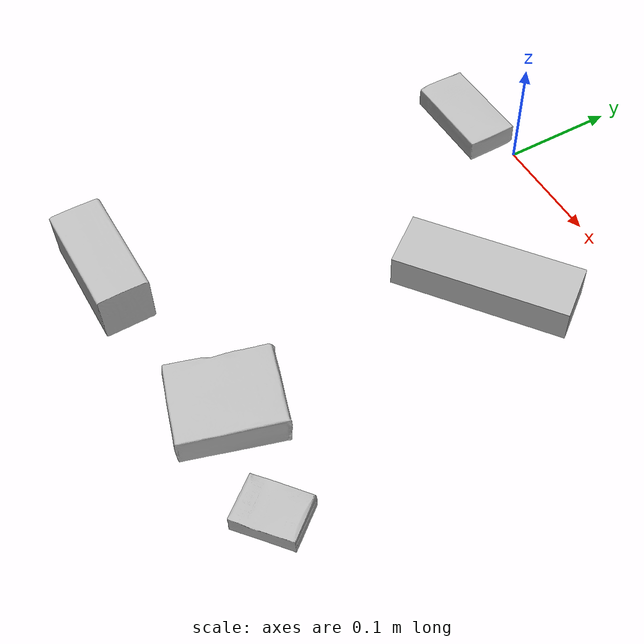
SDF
<sdf version="1.4">
  <world name="default">
    <light name="light1" type="point">
      <pose>0 0 1 0 0 0</pose>
      <diffuse>3 3 3 1</diffuse>
      <specular>3 3 3 1</specular>
    </light>
    <light name="light2" type="point">
      <pose>0 0.5 2 0 0 0</pose>
      <diffuse>1 1 1 1</diffuse>
      <specular>1 1 1 1</specular>
    </light>
    <light name="light3" type="point">
      <pose>0 0.5 2 0 0 0</pose>
      <diffuse>3 3 3 1</diffuse>
      <specular>3 3 3 1</specular>
    </light>
    <scene>
      <ambient>0.7 0.7 0.7</ambient>
    </scene>
    <model name="box1">
      <link name="link_box1">
        <collision name="default">
          <geometry>
            <mesh>
              <uri>model://sugar_box/collision_meshes/collision.obj</uri>
              <scale>0.5 0.5 0.5</scale>
            </mesh>
          </geometry>
          <surface>
            <friction>
              <ode>
                <mu>0.5</mu>
                <mu2>0.5</mu2>
              </ode>
            </friction>
          <contact>
        <ode>
            <max_vel>0</max_vel>
            <min_depth>0.0001</min_depth>
            <kp>1e8</kp>
        </ode>
    </contact></surface>
        </collision>
        <visual name="default">
          <geometry>
            <mesh>
              <uri>model://sugar_box/visual_meshes/visual.dae</uri>
              <scale>0.5 0.5 0.5</scale>
            </mesh>
          </geometry>
        </visual>
        <inertial>
          <mass>0.07249404489994049</mass>
          <pose>0.0005171863012947142 1.924554817378521e-05 -0.00018182402709499002 -0.00040462618385709627 0.0010506635220579009 0.0026153790218148127</pose>
          <inertia>
            <ixx>1.5100456e-05</ixx>
            <iyy>4.8807786e-05</iyy>
            <izz>5.842874e-05</izz>
            <ixy>0</ixy>
            <ixz>0</ixz>
            <iyz>0</iyz>
          </inertia>
        </inertial>
      </link>
      <pose>-0.05619889125227928 -0.016248652711510658 0.011399304494261742 0.0007745932682314662 -0.023433039986203368 -8.346540087773239e-05</pose>
    </model>
    <model name="box2">
      <link name="link_box2">
        <collision name="default">
          <geometry>
            <mesh>
              <uri>model://cracker_box/collision_meshes/collision.obj</uri>
              <scale>0.25 0.25 0.25</scale>
            </mesh>
          </geometry>
          <surface>
            <friction>
              <ode>
                <mu>0.5</mu>
                <mu2>0.5</mu2>
              </ode>
            </friction>
          <contact>
        <ode>
            <max_vel>0</max_vel>
            <min_depth>0.0001</min_depth>
            <kp>1e8</kp>
        </ode>
    </contact></surface>
        </collision>
        <visual name="default">
          <geometry>
            <mesh>
              <uri>model://cracker_box/visual_meshes/visual.dae</uri>
              <scale>0.25 0.25 0.25</scale>
            </mesh>
          </geometry>
        </visual>
        <inertial>
          <mass>0.019660919904708862</mass>
          <pose>0.00023660410079173744 6.358561222441494e-05 -0.0004257383698131889 -0.00031620756431779875 -0.011106489600602764 0.0025467940703044144</pose>
          <inertia>
            <ixx>3.125538e-06</ixx>
            <iyy>5.1608768e-06</iyy>
            <izz>7.365045e-06</izz>
            <ixy>0</ixy>
            <ixz>0</ixz>
            <iyz>0</iyz>
          </inertia>
        </inertial>
      </link>
      <pose>0.21095801889896393 -0.35743963718414307 0.009120448492467403 -0.011787978261200236 -0.007367211563002081 0.6816285299870101</pose>
    </model>
    <model name="box3">
      <link name="link_box3">
        <collision name="default">
          <geometry>
            <mesh>
              <uri>model://wood_block/collision_meshes/collision.obj</uri>
              <scale>0.5 0.5 0.5</scale>
            </mesh>
          </geometry>
          <surface>
            <friction>
              <ode>
                <mu>0.5</mu>
                <mu2>0.5</mu2>
              </ode>
            </friction>
          <contact>
        <ode>
            <max_vel>0</max_vel>
            <min_depth>0.0001</min_depth>
            <kp>1e8</kp>
        </ode>
    </contact></surface>
        </collision>
        <visual name="default">
          <geometry>
            <mesh>
              <uri>model://wood_block/visual_meshes/visual.dae</uri>
              <scale>0.5 0.5 0.5</scale>
            </mesh>
          </geometry>
        </visual>
        <inertial>
          <mass>0.22331082820892334</mass>
          <pose>-2.9066577553749084e-06 -0.000285404734313488 0.00013204292918089777 -0.0522110088927385 -0.005192696049127085 -0.006861379582621758</pose>
          <inertia>
            <ixx>7.470592e-05</ixx>
            <iyy>0.00023599603</iyy>
            <izz>0.0002351133</izz>
            <ixy>0</ixy>
            <ixz>0</ixz>
            <iyz>0</iyz>
          </inertia>
        </inertial>
      </link>
      <pose>-0.04821515083312988 -0.3779585659503937 0.022629257291555405 -0.005208499638852096 0.005718677254076724 -3.136478519424608</pose>
    </model>
    <model name="box4">
      <link name="link_box4">
        <collision name="default">
          <geometry>
            <mesh>
              <uri>model://jenga/collision_meshes/collision.obj</uri>
              <scale>1.0 1.0 1.0</scale>
            </mesh>
          </geometry>
          <surface>
            <friction>
              <ode>
                <mu>0.5</mu>
                <mu2>0.5</mu2>
              </ode>
            </friction>
          <contact>
        <ode>
            <max_vel>0</max_vel>
            <min_depth>0.0001</min_depth>
            <kp>1e8</kp>
        </ode>
    </contact></surface>
        </collision>
        <visual name="default">
          <geometry>
            <mesh>
              <uri>model://jenga/visual_meshes/visual.dae</uri>
              <scale>1.0 1.0 1.0</scale>
            </mesh>
          </geometry>
        </visual>
        <inertial>
          <mass>0.1217927634716034</mass>
          <pose>-2.502855807051674e-07 -0.00010250010382151231 -4.0923401684267446e-05 0.0 -7.34215461761844e-07 0.0</pose>
          <inertia>
            <ixx>3.370301e-05</ixx>
            <iyy>0.00022837071</iyy>
            <izz>0.00024380515</izz>
            <ixy>0</ixy>
            <ixz>0</ixz>
            <iyz>0</iyz>
          </inertia>
        </inertial>
      </link>
      <pose>0.11378563195466995 -0.10776504874229431 0.014999995008111 1.1032223660121658e-08 2.6789142028348866e-10 -2.4876643005322587</pose>
    </model>
    <model name="box5">
      <link name="link_box5">
        <collision name="default">
          <geometry>
            <mesh>
              <uri>model://gelatin_box/collision_meshes/collision.obj</uri>
              <scale>1.0 1.0 1.0</scale>
            </mesh>
          </geometry>
          <surface>
            <friction>
              <ode>
                <mu>0.5</mu>
                <mu2>0.5</mu2>
              </ode>
            </friction>
          <contact>
        <ode>
            <max_vel>0</max_vel>
            <min_depth>0.0001</min_depth>
            <kp>1e8</kp>
        </ode>
    </contact></surface>
        </collision>
        <visual name="default">
          <geometry>
            <mesh>
              <uri>model://gelatin_box/visual_meshes/visual.dae</uri>
              <scale>1.0 1.0 1.0</scale>
            </mesh>
          </geometry>
        </visual>
        <inertial>
          <mass>0.09479870647192001</mass>
          <pose>0.0004319618456065655 0.00011156871914863586 -0.0003640321083366871 -0.0010503720924044775 -0.0047558191559584585 0.01644055760930107</pose>
          <inertia>
            <ixx>6.6920154e-05</ixx>
            <iyy>4.780071e-05</iyy>
            <izz>0.00010186739</izz>
            <ixy>0</ixy>
            <ixz>0</ixz>
            <iyz>0</iyz>
          </inertia>
        </inertial>
      </link>
      <pose>0.11509694159030914 -0.3461461365222931 0.015168312937021255 0.005597429092869626 -0.007304462917996702 2.8467665747450184</pose>
    </model>
  <physics type="ode">
      <max_contacts>50</max_contacts>
      <ode>
        <solver>
          <type>quick</type>
          <iters>75</iters>
        </solver>
        <constraints>
          <contact_max_correcting_vel>0</contact_max_correcting_vel>
          <contact_surface_layer>0</contact_surface_layer>
        </constraints>
      </ode>
    </physics></world>
</sdf>
